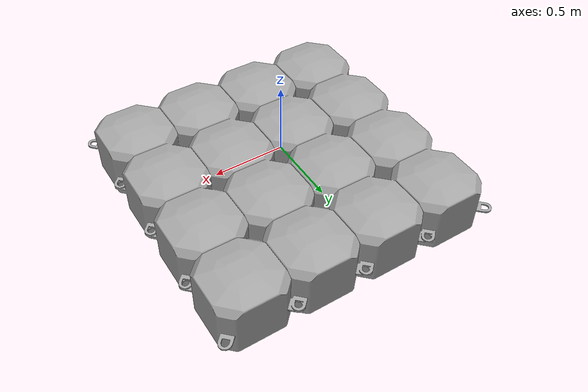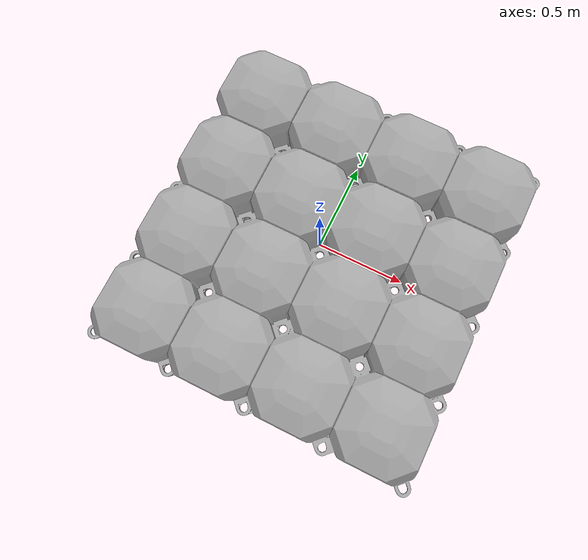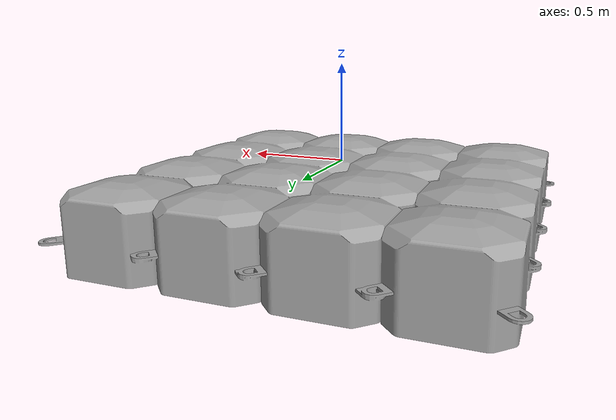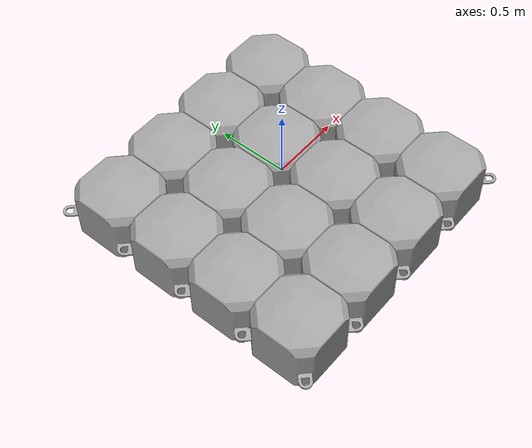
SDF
<?xml version="1.0"?>
<sdf version="1.5">
  <model name="dock_block_4x4">
    <static>true</static>
    <link name="link">
      <collision name="collision">
        <pose>0 0 0 0 0 0</pose>
        <geometry>
          <box>
            <size>2 2 0.4</size>
          </box>
        </geometry>
      </collision>
      <visual name="visual">
        <pose>-0.25 0.25 0.0 0 0 0 </pose>
        <geometry>
          <mesh>
            <uri>file://dock_block_4x4/mesh/dock_block_4x4.dae</uri>
          </mesh>
        </geometry>
      </visual>
    </link>
  </model>
</sdf>
